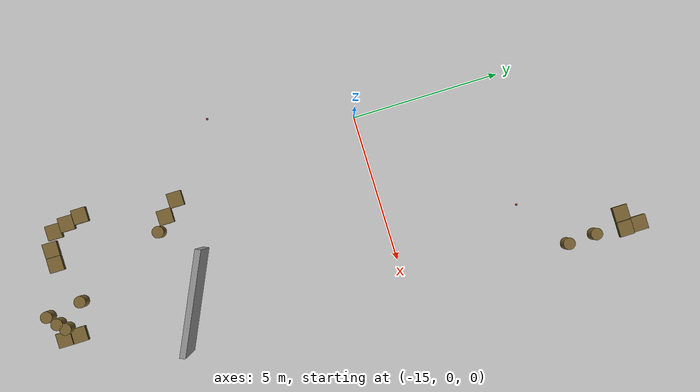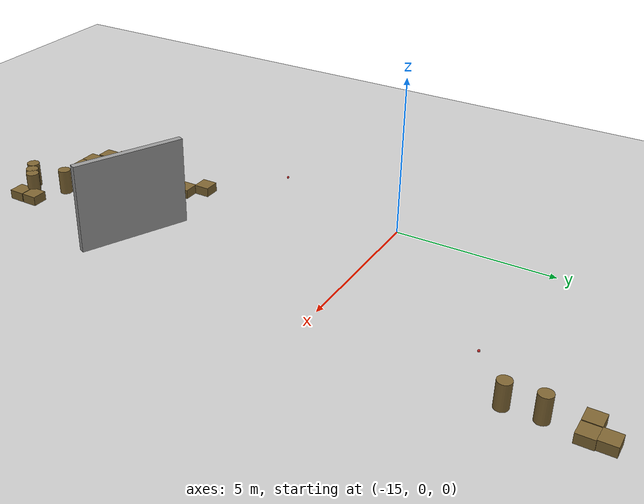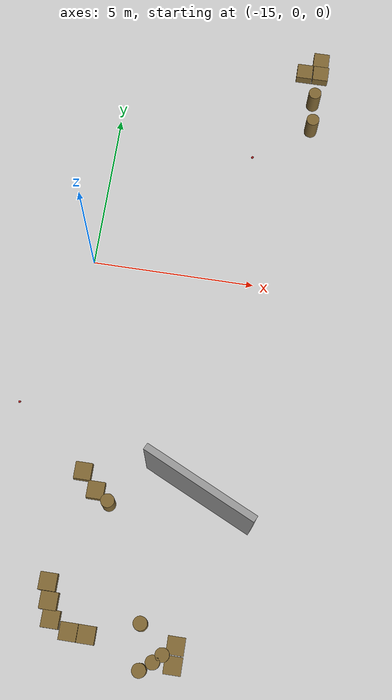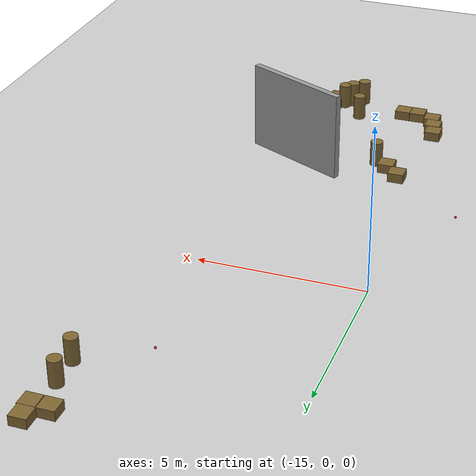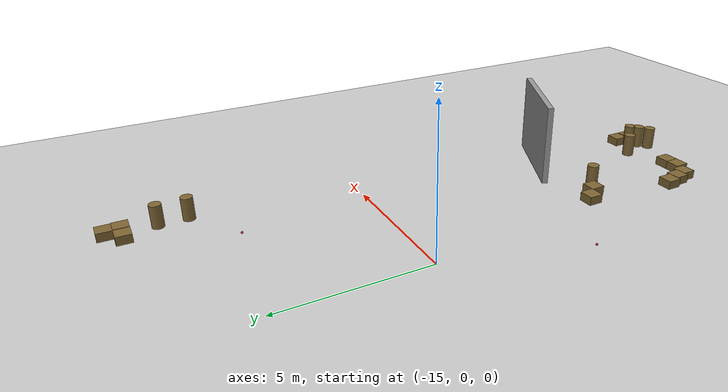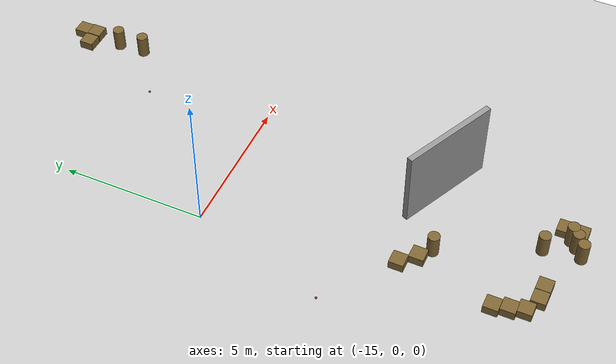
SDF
<sdf version="1.6">
 <world name="default">
  <model name="ground_plane">
   <static>1</static>
   <link name="link">
    <collision name="collision">
     <geometry><plane><normal>0 0 1</normal><size>100 100</size></plane></geometry>
     <surface><friction><ode><mu>100</mu><mu2>50</mu2></ode></friction></surface>
    </collision>
    <visual name="visual">
     <cast_shadows>0</cast_shadows>
     <geometry><plane><normal>0 0 1</normal><size>100 100</size></plane></geometry>
     <material>
      <script><uri>file://media/materials/scripts/gazebo.material</uri><name>Gazebo/Grey</name></script>
     </material>
    </visual>
   </link>
  </model>
  <model name="grey_wall_3.5">
   <link name="link">
    <pose>0 0 1.4 0 -0 0</pose>
    <inertial>
     <mass>1</mass>
     <inertia><ixx>1</ixx><ixy>0</ixy><ixz>0</ixz><iyy>1</iyy><iyz>0</iyz><izz>1</izz></inertia>
    </inertial>
    <visual name="visual">
     <cast_shadows>0</cast_shadows>
     <geometry><box><size>3.5 0.2 2.8</size></box></geometry>
     <material>
      <script>
       <uri>model://grey_wall/materials/scripts</uri>
       <uri>model://grey_wall/materials/textures</uri>
       <name>vrc/grey_wall</name>
      </script>
      <shader type="vertex"><normal_map>__default__</normal_map></shader>
      <ambient>1 1 1 1</ambient>
      <diffuse>1 1 1 1</diffuse>
      <specular>0 0 0 1</specular>
      <emissive>0 0 0 1</emissive>
     </material>
    </visual>
    <collision name="collision">
     <geometry><box><size>3.5 0.2 2.8</size></box></geometry>
     <surface>
      <friction>
       <ode><mu>1</mu><mu2>1</mu2><fdir1>0 0 0</fdir1><slip1>0</slip1><slip2>0</slip2></ode>
       <torsional>
        <coefficient>1</coefficient>
        <patch_radius>0</patch_radius>
        <surface_radius>0</surface_radius>
        <use_patch_radius>1</use_patch_radius>
        <ode><slip>0</slip></ode>
       </torsional>
      </friction>
      <bounce><restitution_coefficient>0</restitution_coefficient><threshold>1e+06</threshold></bounce>
      <contact>
       <collide_without_contact>0</collide_without_contact>
       <collide_without_contact_bitmask>1</collide_without_contact_bitmask>
       <collide_bitmask>1</collide_bitmask>
       <ode>
        <soft_cfm>0</soft_cfm>
        <soft_erp>0.2</soft_erp>
        <kp>1e+13</kp>
        <kd>1</kd>
        <max_vel>0.01</max_vel>
        <min_depth>0</min_depth>
       </ode>
       <bullet>
        <split_impulse>1</split_impulse>
        <split_impulse_penetration_threshold>-0.01</split_impulse_penetration_threshold>
        <soft_cfm>0</soft_cfm>
        <soft_erp>0.2</soft_erp>
        <kp>1e+13</kp>
        <kd>1</kd>
       </bullet>
      </contact>
     </surface>
    </collision>
   </link>
   <static>1</static>
   <pose>-10.6984 -6.76515 0 0 0 -0.436121</pose>
  </model>
  <model name="mini_cylinder_0_clone_0_clone_3">
   <link name="link">
    <inertial>
     <mass>1</mass>
     <inertia><ixx>0.145833</ixx><ixy>0</ixy><ixz>0</ixz><iyy>0.145833</iyy><iyz>0</iyz><izz>0.125</izz></inertia>
    </inertial>
    <visual name="visual">
     <geometry><cylinder><radius>0.2</radius><length>0.8</length></cylinder></geometry>
     <material>
      <script><name>Gazebo/Grey</name><uri>file://media/materials/scripts/gazebo.material</uri></script>
      <shader type="vertex"><normal_map>__default__</normal_map></shader>
      <ambient>0.5 0.4 0.2 1</ambient>
      <diffuse>0.7 0.7 0.7 1</diffuse>
      <specular>0.01 0.01 0.01 1</specular>
      <emissive>0 0 0 1</emissive>
     </material>
    </visual>
    <collision name="collision">
     <geometry><cylinder><radius>0.2</radius><length>0.8</length></cylinder></geometry>
     <surface>
      <friction>
       <ode><mu>1</mu><mu2>1</mu2><fdir1>0 0 0</fdir1><slip1>0</slip1><slip2>0</slip2></ode>
       <torsional>
        <coefficient>1</coefficient>
        <patch_radius>0</patch_radius>
        <surface_radius>0</surface_radius>
        <use_patch_radius>1</use_patch_radius>
        <ode><slip>0</slip></ode>
       </torsional>
      </friction>
      <bounce><restitution_coefficient>0</restitution_coefficient><threshold>1e+06</threshold></bounce>
      <contact>
       <collide_without_contact>0</collide_without_contact>
       <collide_without_contact_bitmask>1</collide_without_contact_bitmask>
       <collide_bitmask>1</collide_bitmask>
       <ode>
        <soft_cfm>0</soft_cfm>
        <soft_erp>0.2</soft_erp>
        <kp>1e+13</kp>
        <kd>1</kd>
        <max_vel>0.01</max_vel>
        <min_depth>0</min_depth>
       </ode>
       <bullet>
        <split_impulse>1</split_impulse>
        <split_impulse_penetration_threshold>-0.01</split_impulse_penetration_threshold>
        <soft_cfm>0</soft_cfm>
        <soft_erp>0.2</soft_erp>
        <kp>1e+13</kp>
        <kd>1</kd>
       </bullet>
      </contact>
     </surface>
    </collision>
   </link>
   <static>1</static>
   <pose>-8.90855 6.55503 0.4 0 -0 0</pose>
  </model>
  <model name="mini_cylinder_0_clone_0_clone_4">
   <link name="link">
    <inertial>
     <mass>1</mass>
     <inertia><ixx>0.145833</ixx><ixy>0</ixy><ixz>0</ixz><iyy>0.145833</iyy><iyz>0</iyz><izz>0.125</izz></inertia>
    </inertial>
    <visual name="visual">
     <geometry><cylinder><radius>0.2</radius><length>0.8</length></cylinder></geometry>
     <material>
      <script><name>Gazebo/Grey</name><uri>file://media/materials/scripts/gazebo.material</uri></script>
      <shader type="vertex"><normal_map>__default__</normal_map></shader>
      <ambient>0.5 0.4 0.2 1</ambient>
      <diffuse>0.7 0.7 0.7 1</diffuse>
      <specular>0.01 0.01 0.01 1</specular>
      <emissive>0 0 0 1</emissive>
     </material>
    </visual>
    <collision name="collision">
     <geometry><cylinder><radius>0.2</radius><length>0.8</length></cylinder></geometry>
     <surface>
      <friction>
       <ode><mu>1</mu><mu2>1</mu2><fdir1>0 0 0</fdir1><slip1>0</slip1><slip2>0</slip2></ode>
       <torsional>
        <coefficient>1</coefficient>
        <patch_radius>0</patch_radius>
        <surface_radius>0</surface_radius>
        <use_patch_radius>1</use_patch_radius>
        <ode><slip>0</slip></ode>
       </torsional>
      </friction>
      <bounce><restitution_coefficient>0</restitution_coefficient><threshold>1e+06</threshold></bounce>
      <contact>
       <collide_without_contact>0</collide_without_contact>
       <collide_without_contact_bitmask>1</collide_without_contact_bitmask>
       <collide_bitmask>1</collide_bitmask>
       <ode>
        <soft_cfm>0</soft_cfm>
        <soft_erp>0.2</soft_erp>
        <kp>1e+13</kp>
        <kd>1</kd>
        <max_vel>0.01</max_vel>
        <min_depth>0</min_depth>
       </ode>
       <bullet>
        <split_impulse>1</split_impulse>
        <split_impulse_penetration_threshold>-0.01</split_impulse_penetration_threshold>
        <soft_cfm>0</soft_cfm>
        <soft_erp>0.2</soft_erp>
        <kp>1e+13</kp>
        <kd>1</kd>
       </bullet>
      </contact>
     </surface>
    </collision>
   </link>
   <static>1</static>
   <pose>-8.86632 5.59316 0.4 0 -0 0</pose>
  </model>
  <model name="mini_cylinder_0_clone_0_clone_clone_clone">
   <link name="link">
    <inertial>
     <mass>1</mass>
     <inertia><ixx>0.145833</ixx><ixy>0</ixy><ixz>0</ixz><iyy>0.145833</iyy><iyz>0</iyz><izz>0.125</izz></inertia>
    </inertial>
    <visual name="visual">
     <geometry><cylinder><radius>0.2</radius><length>0.8</length></cylinder></geometry>
     <material>
      <script><name>Gazebo/Grey</name><uri>file://media/materials/scripts/gazebo.material</uri></script>
      <shader type="vertex"><normal_map>__default__</normal_map></shader>
      <ambient>0.5 0.4 0.2 1</ambient>
      <diffuse>0.7 0.7 0.7 1</diffuse>
      <specular>0.01 0.01 0.01 1</specular>
      <emissive>0 0 0 1</emissive>
     </material>
    </visual>
    <collision name="collision">
     <geometry><cylinder><radius>0.2</radius><length>0.8</length></cylinder></geometry>
     <surface>
      <friction>
       <ode><mu>1</mu><mu2>1</mu2><fdir1>0 0 0</fdir1><slip1>0</slip1><slip2>0</slip2></ode>
       <torsional>
        <coefficient>1</coefficient>
        <patch_radius>0</patch_radius>
        <surface_radius>0</surface_radius>
        <use_patch_radius>1</use_patch_radius>
        <ode><slip>0</slip></ode>
       </torsional>
      </friction>
      <bounce><restitution_coefficient>0</restitution_coefficient><threshold>1e+06</threshold></bounce>
      <contact>
       <collide_without_contact>0</collide_without_contact>
       <collide_without_contact_bitmask>1</collide_without_contact_bitmask>
       <collide_bitmask>1</collide_bitmask>
       <ode>
        <soft_cfm>0</soft_cfm>
        <soft_erp>0.2</soft_erp>
        <kp>1e+13</kp>
        <kd>1</kd>
        <max_vel>0.01</max_vel>
        <min_depth>0</min_depth>
       </ode>
       <bullet>
        <split_impulse>1</split_impulse>
        <split_impulse_penetration_threshold>-0.01</split_impulse_penetration_threshold>
        <soft_cfm>0</soft_cfm>
        <soft_erp>0.2</soft_erp>
        <kp>1e+13</kp>
        <kd>1</kd>
       </bullet>
      </contact>
     </surface>
    </collision>
   </link>
   <static>1</static>
   <pose>-13.2251 -7.33929 0.4 0 -0 0</pose>
  </model>
  <model name="mini_box_clone_clone_3_clone_0_clone">
   <link name="link">
    <inertial>
     <mass>1</mass>
     <inertia>
      <ixx>0.166667</ixx>
      <ixy>0</ixy>
      <ixz>0</ixz>
      <iyy>0.166667</iyy>
      <iyz>0</iyz>
      <izz>0.166667</izz>
     </inertia>
    </inertial>
    <visual name="visual">
     <geometry><box><size>0.5 0.5 0.3</size></box></geometry>
     <material>
      <script><name>Gazebo/Grey</name><uri>file://media/materials/scripts/gazebo.material</uri></script>
      <shader type="vertex"><normal_map>__default__</normal_map></shader>
      <ambient>0.5 0.4 0.2 1</ambient>
      <diffuse>0.7 0.7 0.7 1</diffuse>
      <specular>0.01 0.01 0.01 1</specular>
      <emissive>0 0 0 1</emissive>
     </material>
    </visual>
    <collision name="collision">
     <geometry><box><size>0.5 0.5 0.3</size></box></geometry>
     <surface>
      <friction>
       <ode><mu>1</mu><mu2>1</mu2><fdir1>0 0 0</fdir1><slip1>0</slip1><slip2>0</slip2></ode>
       <torsional>
        <coefficient>1</coefficient>
        <patch_radius>0</patch_radius>
        <surface_radius>0</surface_radius>
        <use_patch_radius>1</use_patch_radius>
        <ode><slip>0</slip></ode>
       </torsional>
      </friction>
      <bounce><restitution_coefficient>0</restitution_coefficient><threshold>1e+06</threshold></bounce>
      <contact>
       <collide_without_contact>0</collide_without_contact>
       <collide_without_contact_bitmask>1</collide_without_contact_bitmask>
       <collide_bitmask>1</collide_bitmask>
       <ode>
        <soft_cfm>0</soft_cfm>
        <soft_erp>0.2</soft_erp>
        <kp>1e+13</kp>
        <kd>1</kd>
        <max_vel>0.01</max_vel>
        <min_depth>0</min_depth>
       </ode>
       <bullet>
        <split_impulse>1</split_impulse>
        <split_impulse_penetration_threshold>-0.01</split_impulse_penetration_threshold>
        <soft_cfm>0</soft_cfm>
        <soft_erp>0.2</soft_erp>
        <kp>1e+13</kp>
        <kd>1</kd>
       </bullet>
      </contact>
     </surface>
    </collision>
   </link>
   <static>1</static>
   <pose>-14.5289 -9.75447 0.15 0 -0 0</pose>
  </model>
  <model name="mini_box_clone_clone_3_clone_0_clone_0">
   <link name="link">
    <inertial>
     <mass>1</mass>
     <inertia>
      <ixx>0.166667</ixx>
      <ixy>0</ixy>
      <ixz>0</ixz>
      <iyy>0.166667</iyy>
      <iyz>0</iyz>
      <izz>0.166667</izz>
     </inertia>
    </inertial>
    <visual name="visual">
     <geometry><box><size>0.5 0.5 0.3</size></box></geometry>
     <material>
      <script><name>Gazebo/Grey</name><uri>file://media/materials/scripts/gazebo.material</uri></script>
      <shader type="vertex"><normal_map>__default__</normal_map></shader>
      <ambient>0.5 0.4 0.2 1</ambient>
      <diffuse>0.7 0.7 0.7 1</diffuse>
      <specular>0.01 0.01 0.01 1</specular>
      <emissive>0 0 0 1</emissive>
     </material>
    </visual>
    <collision name="collision">
     <geometry><box><size>0.5 0.5 0.3</size></box></geometry>
     <surface>
      <friction>
       <ode><mu>1</mu><mu2>1</mu2><fdir1>0 0 0</fdir1><slip1>0</slip1><slip2>0</slip2></ode>
       <torsional>
        <coefficient>1</coefficient>
        <patch_radius>0</patch_radius>
        <surface_radius>0</surface_radius>
        <use_patch_radius>1</use_patch_radius>
        <ode><slip>0</slip></ode>
       </torsional>
      </friction>
      <bounce><restitution_coefficient>0</restitution_coefficient><threshold>1e+06</threshold></bounce>
      <contact>
       <collide_without_contact>0</collide_without_contact>
       <collide_without_contact_bitmask>1</collide_without_contact_bitmask>
       <collide_bitmask>1</collide_bitmask>
       <ode>
        <soft_cfm>0</soft_cfm>
        <soft_erp>0.2</soft_erp>
        <kp>1e+13</kp>
        <kd>1</kd>
        <max_vel>0.01</max_vel>
        <min_depth>0</min_depth>
       </ode>
       <bullet>
        <split_impulse>1</split_impulse>
        <split_impulse_penetration_threshold>-0.01</split_impulse_penetration_threshold>
        <soft_cfm>0</soft_cfm>
        <soft_erp>0.2</soft_erp>
        <kp>1e+13</kp>
        <kd>1</kd>
       </bullet>
      </contact>
     </surface>
    </collision>
   </link>
   <static>1</static>
   <pose>-13.2069 -11.003 0.15 0 -0 0</pose>
  </model>
  <model name="mini_box_clone_clone_3_clone_0_clone_clone">
   <link name="link">
    <inertial>
     <mass>1</mass>
     <inertia>
      <ixx>0.166667</ixx>
      <ixy>0</ixy>
      <ixz>0</ixz>
      <iyy>0.166667</iyy>
      <iyz>0</iyz>
      <izz>0.166667</izz>
     </inertia>
    </inertial>
    <visual name="visual">
     <geometry><box><size>0.5 0.5 0.3</size></box></geometry>
     <material>
      <script><name>Gazebo/Grey</name><uri>file://media/materials/scripts/gazebo.material</uri></script>
      <shader type="vertex"><normal_map>__default__</normal_map></shader>
      <ambient>0.5 0.4 0.2 1</ambient>
      <diffuse>0.7 0.7 0.7 1</diffuse>
      <specular>0.01 0.01 0.01 1</specular>
      <emissive>0 0 0 1</emissive>
     </material>
    </visual>
    <collision name="collision">
     <geometry><box><size>0.5 0.5 0.3</size></box></geometry>
     <surface>
      <friction>
       <ode><mu>1</mu><mu2>1</mu2><fdir1>0 0 0</fdir1><slip1>0</slip1><slip2>0</slip2></ode>
       <torsional>
        <coefficient>1</coefficient>
        <patch_radius>0</patch_radius>
        <surface_radius>0</surface_radius>
        <use_patch_radius>1</use_patch_radius>
        <ode><slip>0</slip></ode>
       </torsional>
      </friction>
      <bounce><restitution_coefficient>0</restitution_coefficient><threshold>1e+06</threshold></bounce>
      <contact>
       <collide_without_contact>0</collide_without_contact>
       <collide_without_contact_bitmask>1</collide_without_contact_bitmask>
       <collide_bitmask>1</collide_bitmask>
       <ode>
        <soft_cfm>0</soft_cfm>
        <soft_erp>0.2</soft_erp>
        <kp>1e+13</kp>
        <kd>1</kd>
        <max_vel>0.01</max_vel>
        <min_depth>0</min_depth>
       </ode>
       <bullet>
        <split_impulse>1</split_impulse>
        <split_impulse_penetration_threshold>-0.01</split_impulse_penetration_threshold>
        <soft_cfm>0</soft_cfm>
        <soft_erp>0.2</soft_erp>
        <kp>1e+13</kp>
        <kd>1</kd>
       </bullet>
      </contact>
     </surface>
    </collision>
   </link>
   <static>1</static>
   <pose>-14.4092 -10.2616 0.15 0 -0 0</pose>
  </model>
  <model name="mini_box_clone_clone_3_clone_0_clone_clone_0">
   <link name="link">
    <inertial>
     <mass>1</mass>
     <inertia>
      <ixx>0.166667</ixx>
      <ixy>0</ixy>
      <ixz>0</ixz>
      <iyy>0.166667</iyy>
      <iyz>0</iyz>
      <izz>0.166667</izz>
     </inertia>
    </inertial>
    <visual name="visual">
     <geometry><box><size>0.5 0.5 0.3</size></box></geometry>
     <material>
      <script><name>Gazebo/Grey</name><uri>file://media/materials/scripts/gazebo.material</uri></script>
      <shader type="vertex"><normal_map>__default__</normal_map></shader>
      <ambient>0.5 0.4 0.2 1</ambient>
      <diffuse>0.7 0.7 0.7 1</diffuse>
      <specular>0.01 0.01 0.01 1</specular>
      <emissive>0 0 0 1</emissive>
     </material>
    </visual>
    <collision name="collision">
     <geometry><box><size>0.5 0.5 0.3</size></box></geometry>
     <surface>
      <friction>
       <ode><mu>1</mu><mu2>1</mu2><fdir1>0 0 0</fdir1><slip1>0</slip1><slip2>0</slip2></ode>
       <torsional>
        <coefficient>1</coefficient>
        <patch_radius>0</patch_radius>
        <surface_radius>0</surface_radius>
        <use_patch_radius>1</use_patch_radius>
        <ode><slip>0</slip></ode>
       </torsional>
      </friction>
      <bounce><restitution_coefficient>0</restitution_coefficient><threshold>1e+06</threshold></bounce>
      <contact>
       <collide_without_contact>0</collide_without_contact>
       <collide_without_contact_bitmask>1</collide_without_contact_bitmask>
       <collide_bitmask>1</collide_bitmask>
       <ode>
        <soft_cfm>0</soft_cfm>
        <soft_erp>0.2</soft_erp>
        <kp>1e+13</kp>
        <kd>1</kd>
        <max_vel>0.01</max_vel>
        <min_depth>0</min_depth>
       </ode>
       <bullet>
        <split_impulse>1</split_impulse>
        <split_impulse_penetration_threshold>-0.01</split_impulse_penetration_threshold>
        <soft_cfm>0</soft_cfm>
        <soft_erp>0.2</soft_erp>
        <kp>1e+13</kp>
        <kd>1</kd>
       </bullet>
      </contact>
     </surface>
    </collision>
   </link>
   <static>1</static>
   <pose>-14.2657 -10.7418 0.15 0 -0 0</pose>
  </model>
  <model name="mini_box_clone_clone_3_clone_0_clone_clone_1">
   <link name="link">
    <inertial>
     <mass>1</mass>
     <inertia>
      <ixx>0.166667</ixx>
      <ixy>0</ixy>
      <ixz>0</ixz>
      <iyy>0.166667</iyy>
      <iyz>0</iyz>
      <izz>0.166667</izz>
     </inertia>
    </inertial>
    <visual name="visual">
     <geometry><box><size>0.5 0.5 0.3</size></box></geometry>
     <material>
      <script><name>Gazebo/Grey</name><uri>file://media/materials/scripts/gazebo.material</uri></script>
      <shader type="vertex"><normal_map>__default__</normal_map></shader>
      <ambient>0.5 0.4 0.2 1</ambient>
      <diffuse>0.7 0.7 0.7 1</diffuse>
      <specular>0.01 0.01 0.01 1</specular>
      <emissive>0 0 0 1</emissive>
     </material>
    </visual>
    <collision name="collision">
     <geometry><box><size>0.5 0.5 0.3</size></box></geometry>
     <surface>
      <friction>
       <ode><mu>1</mu><mu2>1</mu2><fdir1>0 0 0</fdir1><slip1>0</slip1><slip2>0</slip2></ode>
       <torsional>
        <coefficient>1</coefficient>
        <patch_radius>0</patch_radius>
        <surface_radius>0</surface_radius>
        <use_patch_radius>1</use_patch_radius>
        <ode><slip>0</slip></ode>
       </torsional>
      </friction>
      <bounce><restitution_coefficient>0</restitution_coefficient><threshold>1e+06</threshold></bounce>
      <contact>
       <collide_without_contact>0</collide_without_contact>
       <collide_without_contact_bitmask>1</collide_without_contact_bitmask>
       <collide_bitmask>1</collide_bitmask>
       <ode>
        <soft_cfm>0</soft_cfm>
        <soft_erp>0.2</soft_erp>
        <kp>1e+13</kp>
        <kd>1</kd>
        <max_vel>0.01</max_vel>
        <min_depth>0</min_depth>
       </ode>
       <bullet>
        <split_impulse>1</split_impulse>
        <split_impulse_penetration_threshold>-0.01</split_impulse_penetration_threshold>
        <soft_cfm>0</soft_cfm>
        <soft_erp>0.2</soft_erp>
        <kp>1e+13</kp>
        <kd>1</kd>
       </bullet>
      </contact>
     </surface>
    </collision>
   </link>
   <static>1</static>
   <pose>-13.7158 -11.0017 0.15 0 -0 0</pose>
  </model>
  <model name="target_2">
   <link name="link">
    <pose>0 0 0.0375 0 -0 0</pose>
    <inertial>
     <mass>0.1467</mass>
     <inertia>
      <ixx>8.25187e-05</ixx>
      <ixy>0</ixy>
      <ixz>0</ixz>
      <iyy>8.25187e-05</iyy>
      <iyz>0</iyz>
      <izz>8.25187e-05</izz>
     </inertia>
    </inertial>
    <velocity_decay><linear>0</linear><angular>0.005</angular></velocity_decay>
    <visual name="visual">
     <geometry><sphere><radius>0.0375</radius></sphere></geometry>
     <material>
      <script><uri>file://media/materials/scripts/gazebo.material</uri><name>Gazebo/Red</name></script>
      <shader type="pixel"/>
     </material>
    </visual>
    <collision name="collision">
     <geometry><sphere><radius>0.0375</radius></sphere></geometry>
     <surface>
      <friction>
       <ode><mu>1</mu><mu2>1</mu2><fdir1>0 0 0</fdir1><slip1>0</slip1><slip2>0</slip2></ode>
       <torsional>
        <coefficient>1</coefficient>
        <patch_radius>0</patch_radius>
        <surface_radius>0.01</surface_radius>
        <use_patch_radius>0</use_patch_radius>
        <ode><slip>0</slip></ode>
       </torsional>
      </friction>
      <bounce><restitution_coefficient>0</restitution_coefficient><threshold>1e+06</threshold></bounce>
      <contact>
       <collide_without_contact>0</collide_without_contact>
       <collide_without_contact_bitmask>1</collide_without_contact_bitmask>
       <collide_bitmask>1</collide_bitmask>
       <ode>
        <soft_cfm>0</soft_cfm>
        <soft_erp>0.2</soft_erp>
        <kp>100000</kp>
        <kd>100</kd>
        <max_vel>100</max_vel>
        <min_depth>0.001</min_depth>
       </ode>
       <bullet>
        <split_impulse>1</split_impulse>
        <split_impulse_penetration_threshold>-0.01</split_impulse_penetration_threshold>
        <soft_cfm>0</soft_cfm>
        <soft_erp>0.2</soft_erp>
        <kp>100000</kp>
        <kd>100</kd>
       </bullet>
      </contact>
     </surface>
    </collision>
   </link>
   <static>0</static>
   <pose>-10.6016 4.37211 -0.001014 0 -0 0</pose>
  </model>
  <model name="target_5">
   <link name="link">
    <pose>0 0 0.0375 0 -0 0</pose>
    <inertial>
     <mass>0.1467</mass>
     <inertia>
      <ixx>8.25187e-05</ixx>
      <ixy>0</ixy>
      <ixz>0</ixz>
      <iyy>8.25187e-05</iyy>
      <iyz>0</iyz>
      <izz>8.25187e-05</izz>
     </inertia>
    </inertial>
    <velocity_decay><linear>0</linear><angular>0.005</angular></velocity_decay>
    <visual name="visual">
     <geometry><sphere><radius>0.0375</radius></sphere></geometry>
     <material>
      <script><uri>file://media/materials/scripts/gazebo.material</uri><name>Gazebo/Red</name></script>
      <shader type="pixel"/>
     </material>
    </visual>
    <collision name="collision">
     <geometry><sphere><radius>0.0375</radius></sphere></geometry>
     <surface>
      <friction>
       <ode><mu>1</mu><mu2>1</mu2><fdir1>0 0 0</fdir1><slip1>0</slip1><slip2>0</slip2></ode>
       <torsional>
        <coefficient>1</coefficient>
        <patch_radius>0</patch_radius>
        <surface_radius>0.01</surface_radius>
        <use_patch_radius>0</use_patch_radius>
        <ode><slip>0</slip></ode>
       </torsional>
      </friction>
      <bounce><restitution_coefficient>0</restitution_coefficient><threshold>1e+06</threshold></bounce>
      <contact>
       <collide_without_contact>0</collide_without_contact>
       <collide_without_contact_bitmask>1</collide_without_contact_bitmask>
       <collide_bitmask>1</collide_bitmask>
       <ode>
        <soft_cfm>0</soft_cfm>
        <soft_erp>0.2</soft_erp>
        <kp>100000</kp>
        <kd>100</kd>
        <max_vel>100</max_vel>
        <min_depth>0.001</min_depth>
       </ode>
       <bullet>
        <split_impulse>1</split_impulse>
        <split_impulse_penetration_threshold>-0.01</split_impulse_penetration_threshold>
        <soft_cfm>0</soft_cfm>
        <soft_erp>0.2</soft_erp>
        <kp>100000</kp>
        <kd>100</kd>
       </bullet>
      </contact>
     </surface>
    </collision>
   </link>
   <static>0</static>
   <pose>-16.3973 -4.73224 -0.001014 0 -0 0</pose>
  </model>
  <model name="mini_cylinder_0_clone_0_clone_0_clone_11">
   <link name="link">
    <inertial>
     <mass>1</mass>
     <inertia><ixx>0.145833</ixx><ixy>0</ixy><ixz>0</ixz><iyy>0.145833</iyy><iyz>0</iyz><izz>0.125</izz></inertia>
    </inertial>
    <visual name="visual">
     <geometry><cylinder><radius>0.2</radius><length>0.8</length></cylinder></geometry>
     <material>
      <script><name>Gazebo/Grey</name><uri>file://media/materials/scripts/gazebo.material</uri></script>
      <shader type="vertex"><normal_map>__default__</normal_map></shader>
      <ambient>0.5 0.4 0.2 1</ambient>
      <diffuse>0.7 0.7 0.7 1</diffuse>
      <specular>0.01 0.01 0.01 1</specular>
      <emissive>0 0 0 1</emissive>
     </material>
    </visual>
    <collision name="collision">
     <geometry><cylinder><radius>0.2</radius><length>0.8</length></cylinder></geometry>
     <surface>
      <friction>
       <ode><mu>1</mu><mu2>1</mu2><fdir1>0 0 0</fdir1><slip1>0</slip1><slip2>0</slip2></ode>
       <torsional>
        <coefficient>1</coefficient>
        <patch_radius>0</patch_radius>
        <surface_radius>0</surface_radius>
        <use_patch_radius>1</use_patch_radius>
        <ode><slip>0</slip></ode>
       </torsional>
      </friction>
      <bounce><restitution_coefficient>0</restitution_coefficient><threshold>1e+06</threshold></bounce>
      <contact>
       <collide_without_contact>0</collide_without_contact>
       <collide_without_contact_bitmask>1</collide_without_contact_bitmask>
       <collide_bitmask>1</collide_bitmask>
       <ode>
        <soft_cfm>0</soft_cfm>
        <soft_erp>0.2</soft_erp>
        <kp>1e+13</kp>
        <kd>1</kd>
        <max_vel>0.01</max_vel>
        <min_depth>0</min_depth>
       </ode>
       <bullet>
        <split_impulse>1</split_impulse>
        <split_impulse_penetration_threshold>-0.01</split_impulse_penetration_threshold>
        <soft_cfm>0</soft_cfm>
        <soft_erp>0.2</soft_erp>
        <kp>1e+13</kp>
        <kd>1</kd>
       </bullet>
      </contact>
     </surface>
    </collision>
   </link>
   <static>1</static>
   <pose>-11.7615 -10.493 0.4 0 -0 0</pose>
  </model>
  <model name="mini_cylinder_0_clone_0_clone_0_clone_12">
   <link name="link">
    <inertial>
     <mass>1</mass>
     <inertia><ixx>0.145833</ixx><ixy>0</ixy><ixz>0</ixz><iyy>0.145833</iyy><iyz>0</iyz><izz>0.125</izz></inertia>
    </inertial>
    <visual name="visual">
     <geometry><cylinder><radius>0.2</radius><length>0.8</length></cylinder></geometry>
     <material>
      <script><name>Gazebo/Grey</name><uri>file://media/materials/scripts/gazebo.material</uri></script>
      <shader type="vertex"><normal_map>__default__</normal_map></shader>
      <ambient>0.5 0.4 0.2 1</ambient>
      <diffuse>0.7 0.7 0.7 1</diffuse>
      <specular>0.01 0.01 0.01 1</specular>
      <emissive>0 0 0 1</emissive>
     </material>
    </visual>
    <collision name="collision">
     <geometry><cylinder><radius>0.2</radius><length>0.8</length></cylinder></geometry>
     <surface>
      <friction>
       <ode><mu>1</mu><mu2>1</mu2><fdir1>0 0 0</fdir1><slip1>0</slip1><slip2>0</slip2></ode>
       <torsional>
        <coefficient>1</coefficient>
        <patch_radius>0</patch_radius>
        <surface_radius>0</surface_radius>
        <use_patch_radius>1</use_patch_radius>
        <ode><slip>0</slip></ode>
       </torsional>
      </friction>
      <bounce><restitution_coefficient>0</restitution_coefficient><threshold>1e+06</threshold></bounce>
      <contact>
       <collide_without_contact>0</collide_without_contact>
       <collide_without_contact_bitmask>1</collide_without_contact_bitmask>
       <collide_bitmask>1</collide_bitmask>
       <ode>
        <soft_cfm>0</soft_cfm>
        <soft_erp>0.2</soft_erp>
        <kp>1e+13</kp>
        <kd>1</kd>
        <max_vel>0.01</max_vel>
        <min_depth>0</min_depth>
       </ode>
       <bullet>
        <split_impulse>1</split_impulse>
        <split_impulse_penetration_threshold>-0.01</split_impulse_penetration_threshold>
        <soft_cfm>0</soft_cfm>
        <soft_erp>0.2</soft_erp>
        <kp>1e+13</kp>
        <kd>1</kd>
       </bullet>
      </contact>
     </surface>
    </collision>
   </link>
   <static>1</static>
   <pose>-11.27 -11.443 0.4 0 -0 0</pose>
  </model>
  <model name="mini_cylinder_0_clone_0_clone_0_clone_13">
   <link name="link">
    <inertial>
     <mass>1</mass>
     <inertia><ixx>0.145833</ixx><ixy>0</ixy><ixz>0</ixz><iyy>0.145833</iyy><iyz>0</iyz><izz>0.125</izz></inertia>
    </inertial>
    <visual name="visual">
     <geometry><cylinder><radius>0.2</radius><length>0.8</length></cylinder></geometry>
     <material>
      <script><name>Gazebo/Grey</name><uri>file://media/materials/scripts/gazebo.material</uri></script>
      <shader type="vertex"><normal_map>__default__</normal_map></shader>
      <ambient>0.5 0.4 0.2 1</ambient>
      <diffuse>0.7 0.7 0.7 1</diffuse>
      <specular>0.01 0.01 0.01 1</specular>
      <emissive>0 0 0 1</emissive>
     </material>
    </visual>
    <collision name="collision">
     <geometry><cylinder><radius>0.2</radius><length>0.8</length></cylinder></geometry>
     <surface>
      <friction>
       <ode><mu>1</mu><mu2>1</mu2><fdir1>0 0 0</fdir1><slip1>0</slip1><slip2>0</slip2></ode>
       <torsional>
        <coefficient>1</coefficient>
        <patch_radius>0</patch_radius>
        <surface_radius>0</surface_radius>
        <use_patch_radius>1</use_patch_radius>
        <ode><slip>0</slip></ode>
       </torsional>
      </friction>
      <bounce><restitution_coefficient>0</restitution_coefficient><threshold>1e+06</threshold></bounce>
      <contact>
       <collide_without_contact>0</collide_without_contact>
       <collide_without_contact_bitmask>1</collide_without_contact_bitmask>
       <collide_bitmask>1</collide_bitmask>
       <ode>
        <soft_cfm>0</soft_cfm>
        <soft_erp>0.2</soft_erp>
        <kp>1e+13</kp>
        <kd>1</kd>
        <max_vel>0.01</max_vel>
        <min_depth>0</min_depth>
       </ode>
       <bullet>
        <split_impulse>1</split_impulse>
        <split_impulse_penetration_threshold>-0.01</split_impulse_penetration_threshold>
        <soft_cfm>0</soft_cfm>
        <soft_erp>0.2</soft_erp>
        <kp>1e+13</kp>
        <kd>1</kd>
       </bullet>
      </contact>
     </surface>
    </collision>
   </link>
   <static>1</static>
   <pose>-11.0407 -11.2139 0.4 0 -0 0</pose>
  </model>
  <model name="mini_cylinder_0_clone_0_clone_0_clone_14">
   <link name="link">
    <inertial>
     <mass>1</mass>
     <inertia><ixx>0.145833</ixx><ixy>0</ixy><ixz>0</ixz><iyy>0.145833</iyy><iyz>0</iyz><izz>0.125</izz></inertia>
    </inertial>
    <visual name="visual">
     <geometry><cylinder><radius>0.2</radius><length>0.8</length></cylinder></geometry>
     <material>
      <script><name>Gazebo/Grey</name><uri>file://media/materials/scripts/gazebo.material</uri></script>
      <shader type="vertex"><normal_map>__default__</normal_map></shader>
      <ambient>0.5 0.4 0.2 1</ambient>
      <diffuse>0.7 0.7 0.7 1</diffuse>
      <specular>0.01 0.01 0.01 1</specular>
      <emissive>0 0 0 1</emissive>
     </material>
    </visual>
    <collision name="collision">
     <geometry><cylinder><radius>0.2</radius><length>0.8</length></cylinder></geometry>
     <surface>
      <friction>
       <ode><mu>1</mu><mu2>1</mu2><fdir1>0 0 0</fdir1><slip1>0</slip1><slip2>0</slip2></ode>
       <torsional>
        <coefficient>1</coefficient>
        <patch_radius>0</patch_radius>
        <surface_radius>0</surface_radius>
        <use_patch_radius>1</use_patch_radius>
        <ode><slip>0</slip></ode>
       </torsional>
      </friction>
      <bounce><restitution_coefficient>0</restitution_coefficient><threshold>1e+06</threshold></bounce>
      <contact>
       <collide_without_contact>0</collide_without_contact>
       <collide_without_contact_bitmask>1</collide_without_contact_bitmask>
       <collide_bitmask>1</collide_bitmask>
       <ode>
        <soft_cfm>0</soft_cfm>
        <soft_erp>0.2</soft_erp>
        <kp>1e+13</kp>
        <kd>1</kd>
        <max_vel>0.01</max_vel>
        <min_depth>0</min_depth>
       </ode>
       <bullet>
        <split_impulse>1</split_impulse>
        <split_impulse_penetration_threshold>-0.01</split_impulse_penetration_threshold>
        <soft_cfm>0</soft_cfm>
        <soft_erp>0.2</soft_erp>
        <kp>1e+13</kp>
        <kd>1</kd>
       </bullet>
      </contact>
     </surface>
    </collision>
   </link>
   <static>1</static>
   <pose>-11.5976 -11.7054 0.4 0 -0 0</pose>
  </model>
  <model name="mini_box_clone_clone_3_clone_0_clone_0_clone_9">
   <link name="link">
    <inertial>
     <mass>1</mass>
     <inertia>
      <ixx>0.166667</ixx>
      <ixy>0</ixy>
      <ixz>0</ixz>
      <iyy>0.166667</iyy>
      <iyz>0</iyz>
      <izz>0.166667</izz>
     </inertia>
    </inertial>
    <visual name="visual">
     <geometry><box><size>0.5 0.5 0.3</size></box></geometry>
     <material>
      <script><name>Gazebo/Grey</name><uri>file://media/materials/scripts/gazebo.material</uri></script>
      <shader type="vertex"><normal_map>__default__</normal_map></shader>
      <ambient>0.5 0.4 0.2 1</ambient>
      <diffuse>0.7 0.7 0.7 1</diffuse>
      <specular>0.01 0.01 0.01 1</specular>
      <emissive>0 0 0 1</emissive>
     </material>
    </visual>
    <collision name="collision">
     <geometry><box><size>0.5 0.5 0.3</size></box></geometry>
     <surface>
      <friction>
       <ode><mu>1</mu><mu2>1</mu2><fdir1>0 0 0</fdir1><slip1>0</slip1><slip2>0</slip2></ode>
       <torsional>
        <coefficient>1</coefficient>
        <patch_radius>0</patch_radius>
        <surface_radius>0</surface_radius>
        <use_patch_radius>1</use_patch_radius>
        <ode><slip>0</slip></ode>
       </torsional>
      </friction>
      <bounce><restitution_coefficient>0</restitution_coefficient><threshold>1e+06</threshold></bounce>
      <contact>
       <collide_without_contact>0</collide_without_contact>
       <collide_without_contact_bitmask>1</collide_without_contact_bitmask>
       <collide_bitmask>1</collide_bitmask>
       <ode>
        <soft_cfm>0</soft_cfm>
        <soft_erp>0.2</soft_erp>
        <kp>1e+13</kp>
        <kd>1</kd>
        <max_vel>0.01</max_vel>
        <min_depth>0</min_depth>
       </ode>
       <bullet>
        <split_impulse>1</split_impulse>
        <split_impulse_penetration_threshold>-0.01</split_impulse_penetration_threshold>
        <soft_cfm>0</soft_cfm>
        <soft_erp>0.2</soft_erp>
        <kp>1e+13</kp>
        <kd>1</kd>
       </bullet>
      </contact>
     </surface>
    </collision>
   </link>
   <static>1</static>
   <pose>-10.7131 -10.9191 0.15 0 -0 0</pose>
  </model>
  <model name="mini_box_clone_clone_3_clone_0_clone_0_clone_10">
   <link name="link">
    <inertial>
     <mass>1</mass>
     <inertia>
      <ixx>0.166667</ixx>
      <ixy>0</ixy>
      <ixz>0</ixz>
      <iyy>0.166667</iyy>
      <iyz>0</iyz>
      <izz>0.166667</izz>
     </inertia>
    </inertial>
    <visual name="visual">
     <geometry><box><size>0.5 0.5 0.3</size></box></geometry>
     <material>
      <script><name>Gazebo/Grey</name><uri>file://media/materials/scripts/gazebo.material</uri></script>
      <shader type="vertex"><normal_map>__default__</normal_map></shader>
      <ambient>0.5 0.4 0.2 1</ambient>
      <diffuse>0.7 0.7 0.7 1</diffuse>
      <specular>0.01 0.01 0.01 1</specular>
      <emissive>0 0 0 1</emissive>
     </material>
    </visual>
    <collision name="collision">
     <geometry><box><size>0.5 0.5 0.3</size></box></geometry>
     <surface>
      <friction>
       <ode><mu>1</mu><mu2>1</mu2><fdir1>0 0 0</fdir1><slip1>0</slip1><slip2>0</slip2></ode>
       <torsional>
        <coefficient>1</coefficient>
        <patch_radius>0</patch_radius>
        <surface_radius>0</surface_radius>
        <use_patch_radius>1</use_patch_radius>
        <ode><slip>0</slip></ode>
       </torsional>
      </friction>
      <bounce><restitution_coefficient>0</restitution_coefficient><threshold>1e+06</threshold></bounce>
      <contact>
       <collide_without_contact>0</collide_without_contact>
       <collide_without_contact_bitmask>1</collide_without_contact_bitmask>
       <collide_bitmask>1</collide_bitmask>
       <ode>
        <soft_cfm>0</soft_cfm>
        <soft_erp>0.2</soft_erp>
        <kp>1e+13</kp>
        <kd>1</kd>
        <max_vel>0.01</max_vel>
        <min_depth>0</min_depth>
       </ode>
       <bullet>
        <split_impulse>1</split_impulse>
        <split_impulse_penetration_threshold>-0.01</split_impulse_penetration_threshold>
        <soft_cfm>0</soft_cfm>
        <soft_erp>0.2</soft_erp>
        <kp>1e+13</kp>
        <kd>1</kd>
       </bullet>
      </contact>
     </surface>
    </collision>
   </link>
   <static>1</static>
   <pose>-10.7131 -11.443 0.15 0 -0 0</pose>
  </model>
  <model name="mini_box_clone_clone_3_clone_0_clone_0_clone_13">
   <link name="link">
    <inertial>
     <mass>1</mass>
     <inertia>
      <ixx>0.166667</ixx>
      <ixy>0</ixy>
      <ixz>0</ixz>
      <iyy>0.166667</iyy>
      <iyz>0</iyz>
      <izz>0.166667</izz>
     </inertia>
    </inertial>
    <visual name="visual">
     <geometry><box><size>0.5 0.5 0.3</size></box></geometry>
     <material>
      <script><name>Gazebo/Grey</name><uri>file://media/materials/scripts/gazebo.material</uri></script>
      <shader type="vertex"><normal_map>__default__</normal_map></shader>
      <ambient>0.5 0.4 0.2 1</ambient>
      <diffuse>0.7 0.7 0.7 1</diffuse>
      <specular>0.01 0.01 0.01 1</specular>
      <emissive>0 0 0 1</emissive>
     </material>
    </visual>
    <collision name="collision">
     <geometry><box><size>0.5 0.5 0.3</size></box></geometry>
     <surface>
      <friction>
       <ode><mu>1</mu><mu2>1</mu2><fdir1>0 0 0</fdir1><slip1>0</slip1><slip2>0</slip2></ode>
       <torsional>
        <coefficient>1</coefficient>
        <patch_radius>0</patch_radius>
        <surface_radius>0</surface_radius>
        <use_patch_radius>1</use_patch_radius>
        <ode><slip>0</slip></ode>
       </torsional>
      </friction>
      <bounce><restitution_coefficient>0</restitution_coefficient><threshold>1e+06</threshold></bounce>
      <contact>
       <collide_without_contact>0</collide_without_contact>
       <collide_without_contact_bitmask>1</collide_without_contact_bitmask>
       <collide_bitmask>1</collide_bitmask>
       <ode>
        <soft_cfm>0</soft_cfm>
        <soft_erp>0.2</soft_erp>
        <kp>1e+13</kp>
        <kd>1</kd>
        <max_vel>0.01</max_vel>
        <min_depth>0</min_depth>
       </ode>
       <bullet>
        <split_impulse>1</split_impulse>
        <split_impulse_penetration_threshold>-0.01</split_impulse_penetration_threshold>
        <soft_cfm>0</soft_cfm>
        <soft_erp>0.2</soft_erp>
        <kp>1e+13</kp>
        <kd>1</kd>
       </bullet>
      </contact>
     </surface>
    </collision>
   </link>
   <static>1</static>
   <pose>-8.81276 8.11628 0.15 0 -0 0</pose>
  </model>
  <model name="mini_box_clone_clone_3_clone_0_clone_0_clone_14">
   <link name="link">
    <inertial>
     <mass>1</mass>
     <inertia>
      <ixx>0.166667</ixx>
      <ixy>0</ixy>
      <ixz>0</ixz>
      <iyy>0.166667</iyy>
      <iyz>0</iyz>
      <izz>0.166667</izz>
     </inertia>
    </inertial>
    <visual name="visual">
     <geometry><box><size>0.5 0.5 0.3</size></box></geometry>
     <material>
      <script><name>Gazebo/Grey</name><uri>file://media/materials/scripts/gazebo.material</uri></script>
      <shader type="vertex"><normal_map>__default__</normal_map></shader>
      <ambient>0.5 0.4 0.2 1</ambient>
      <diffuse>0.7 0.7 0.7 1</diffuse>
      <specular>0.01 0.01 0.01 1</specular>
      <emissive>0 0 0 1</emissive>
     </material>
    </visual>
    <collision name="collision">
     <geometry><box><size>0.5 0.5 0.3</size></box></geometry>
     <surface>
      <friction>
       <ode><mu>1</mu><mu2>1</mu2><fdir1>0 0 0</fdir1><slip1>0</slip1><slip2>0</slip2></ode>
       <torsional>
        <coefficient>1</coefficient>
        <patch_radius>0</patch_radius>
        <surface_radius>0</surface_radius>
        <use_patch_radius>1</use_patch_radius>
        <ode><slip>0</slip></ode>
       </torsional>
      </friction>
      <bounce><restitution_coefficient>0</restitution_coefficient><threshold>1e+06</threshold></bounce>
      <contact>
       <collide_without_contact>0</collide_without_contact>
       <collide_without_contact_bitmask>1</collide_without_contact_bitmask>
       <collide_bitmask>1</collide_bitmask>
       <ode>
        <soft_cfm>0</soft_cfm>
        <soft_erp>0.2</soft_erp>
        <kp>1e+13</kp>
        <kd>1</kd>
        <max_vel>0.01</max_vel>
        <min_depth>0</min_depth>
       </ode>
       <bullet>
        <split_impulse>1</split_impulse>
        <split_impulse_penetration_threshold>-0.01</split_impulse_penetration_threshold>
        <soft_cfm>0</soft_cfm>
        <soft_erp>0.2</soft_erp>
        <kp>1e+13</kp>
        <kd>1</kd>
       </bullet>
      </contact>
     </surface>
    </collision>
   </link>
   <static>1</static>
   <pose>-8.78019 7.62502 0.15 0 -0 0</pose>
  </model>
  <model name="mini_box_clone_clone_3_clone_0_clone_0_clone_15">
   <link name="link">
    <inertial>
     <mass>1</mass>
     <inertia>
      <ixx>0.166667</ixx>
      <ixy>0</ixy>
      <ixz>0</ixz>
      <iyy>0.166667</iyy>
      <iyz>0</iyz>
      <izz>0.166667</izz>
     </inertia>
    </inertial>
    <visual name="visual">
     <geometry><box><size>0.5 0.5 0.3</size></box></geometry>
     <material>
      <script><name>Gazebo/Grey</name><uri>file://media/materials/scripts/gazebo.material</uri></script>
      <shader type="vertex"><normal_map>__default__</normal_map></shader>
      <ambient>0.5 0.4 0.2 1</ambient>
      <diffuse>0.7 0.7 0.7 1</diffuse>
      <specular>0.01 0.01 0.01 1</specular>
      <emissive>0 0 0 1</emissive>
     </material>
    </visual>
    <collision name="collision">
     <geometry><box><size>0.5 0.5 0.3</size></box></geometry>
     <surface>
      <friction>
       <ode><mu>1</mu><mu2>1</mu2><fdir1>0 0 0</fdir1><slip1>0</slip1><slip2>0</slip2></ode>
       <torsional>
        <coefficient>1</coefficient>
        <patch_radius>0</patch_radius>
        <surface_radius>0</surface_radius>
        <use_patch_radius>1</use_patch_radius>
        <ode><slip>0</slip></ode>
       </torsional>
      </friction>
      <bounce><restitution_coefficient>0</restitution_coefficient><threshold>1e+06</threshold></bounce>
      <contact>
       <collide_without_contact>0</collide_without_contact>
       <collide_without_contact_bitmask>1</collide_without_contact_bitmask>
       <collide_bitmask>1</collide_bitmask>
       <ode>
        <soft_cfm>0</soft_cfm>
        <soft_erp>0.2</soft_erp>
        <kp>1e+13</kp>
        <kd>1</kd>
        <max_vel>0.01</max_vel>
        <min_depth>0</min_depth>
       </ode>
       <bullet>
        <split_impulse>1</split_impulse>
        <split_impulse_penetration_threshold>-0.01</split_impulse_penetration_threshold>
        <soft_cfm>0</soft_cfm>
        <soft_erp>0.2</soft_erp>
        <kp>1e+13</kp>
        <kd>1</kd>
       </bullet>
      </contact>
     </surface>
    </collision>
   </link>
   <static>1</static>
   <pose>-9.30423 7.62502 0.15 0 -0 0</pose>
  </model>
  <model name="mini_box_clone_clone_3_clone_0_clone_0_clone_16">
   <link name="link">
    <inertial>
     <mass>1</mass>
     <inertia>
      <ixx>0.166667</ixx>
      <ixy>0</ixy>
      <ixz>0</ixz>
      <iyy>0.166667</iyy>
      <iyz>0</iyz>
      <izz>0.166667</izz>
     </inertia>
    </inertial>
    <visual name="visual">
     <geometry><box><size>0.5 0.5 0.3</size></box></geometry>
     <material>
      <script><name>Gazebo/Grey</name><uri>file://media/materials/scripts/gazebo.material</uri></script>
      <shader type="vertex"><normal_map>__default__</normal_map></shader>
      <ambient>0.5 0.4 0.2 1</ambient>
      <diffuse>0.7 0.7 0.7 1</diffuse>
      <specular>0.01 0.01 0.01 1</specular>
      <emissive>0 0 0 1</emissive>
     </material>
    </visual>
    <collision name="collision">
     <geometry><box><size>0.5 0.5 0.3</size></box></geometry>
     <surface>
      <friction>
       <ode><mu>1</mu><mu2>1</mu2><fdir1>0 0 0</fdir1><slip1>0</slip1><slip2>0</slip2></ode>
       <torsional>
        <coefficient>1</coefficient>
        <patch_radius>0</patch_radius>
        <surface_radius>0</surface_radius>
        <use_patch_radius>1</use_patch_radius>
        <ode><slip>0</slip></ode>
       </torsional>
      </friction>
      <bounce><restitution_coefficient>0</restitution_coefficient><threshold>1e+06</threshold></bounce>
      <contact>
       <collide_without_contact>0</collide_without_contact>
       <collide_without_contact_bitmask>1</collide_without_contact_bitmask>
       <collide_bitmask>1</collide_bitmask>
       <ode>
        <soft_cfm>0</soft_cfm>
        <soft_erp>0.2</soft_erp>
        <kp>1e+13</kp>
        <kd>1</kd>
        <max_vel>0.01</max_vel>
        <min_depth>0</min_depth>
       </ode>
       <bullet>
        <split_impulse>1</split_impulse>
        <split_impulse_penetration_threshold>-0.01</split_impulse_penetration_threshold>
        <soft_cfm>0</soft_cfm>
        <soft_erp>0.2</soft_erp>
        <kp>1e+13</kp>
        <kd>1</kd>
       </bullet>
      </contact>
     </surface>
    </collision>
   </link>
   <static>1</static>
   <pose>-13.6619 -7.02016 0.15 0 -0 0</pose>
  </model>
  <model name="mini_box_clone_clone_3_clone_0_clone_0_clone_17">
   <link name="link">
    <inertial>
     <mass>1</mass>
     <inertia>
      <ixx>0.166667</ixx>
      <ixy>0</ixy>
      <ixz>0</ixz>
      <iyy>0.166667</iyy>
      <iyz>0</iyz>
      <izz>0.166667</izz>
     </inertia>
    </inertial>
    <visual name="visual">
     <geometry><box><size>0.5 0.5 0.3</size></box></geometry>
     <material>
      <script><name>Gazebo/Grey</name><uri>file://media/materials/scripts/gazebo.material</uri></script>
      <shader type="vertex"><normal_map>__default__</normal_map></shader>
      <ambient>0.5 0.4 0.2 1</ambient>
      <diffuse>0.7 0.7 0.7 1</diffuse>
      <specular>0.01 0.01 0.01 1</specular>
      <emissive>0 0 0 1</emissive>
     </material>
    </visual>
    <collision name="collision">
     <geometry><box><size>0.5 0.5 0.3</size></box></geometry>
     <surface>
      <friction>
       <ode><mu>1</mu><mu2>1</mu2><fdir1>0 0 0</fdir1><slip1>0</slip1><slip2>0</slip2></ode>
       <torsional>
        <coefficient>1</coefficient>
        <patch_radius>0</patch_radius>
        <surface_radius>0</surface_radius>
        <use_patch_radius>1</use_patch_radius>
        <ode><slip>0</slip></ode>
       </torsional>
      </friction>
      <bounce><restitution_coefficient>0</restitution_coefficient><threshold>1e+06</threshold></bounce>
      <contact>
       <collide_without_contact>0</collide_without_contact>
       <collide_without_contact_bitmask>1</collide_without_contact_bitmask>
       <collide_bitmask>1</collide_bitmask>
       <ode>
        <soft_cfm>0</soft_cfm>
        <soft_erp>0.2</soft_erp>
        <kp>1e+13</kp>
        <kd>1</kd>
        <max_vel>0.01</max_vel>
        <min_depth>0</min_depth>
       </ode>
       <bullet>
        <split_impulse>1</split_impulse>
        <split_impulse_penetration_threshold>-0.01</split_impulse_penetration_threshold>
        <soft_cfm>0</soft_cfm>
        <soft_erp>0.2</soft_erp>
        <kp>1e+13</kp>
        <kd>1</kd>
       </bullet>
      </contact>
     </surface>
    </collision>
   </link>
   <static>1</static>
   <pose>-14.1204 -6.52869 0.15 0 -0 0</pose>
  </model>
 </world>
</sdf>
